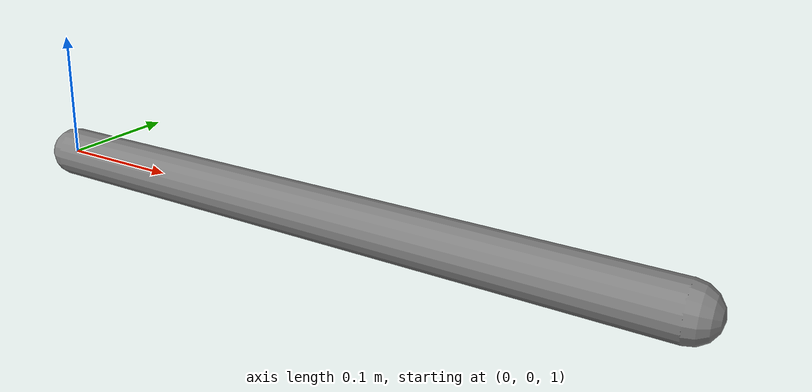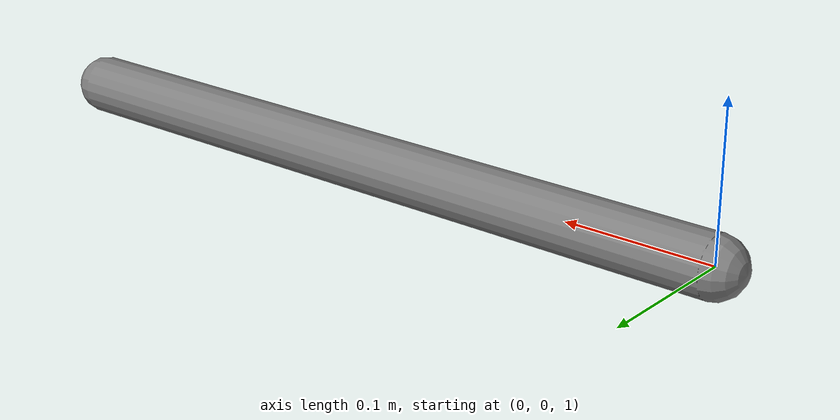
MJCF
<mujoco model="spinning-rod">
  <option gravity="0 0 -9.81" timestep="0.001"/>
  <compiler angle="radian"/>
  <worldbody>
    <body name="rod" pos="0 0 1">
      <joint name="hinge" type="hinge" axis="0 0 1" damping="0"/>
      <geom type="capsule" size="0.02" fromto="0 0 0 0.5 0 0" mass="1.0"/>
      <site name="tip" pos="0.5 0 0"/>
    </body>
  </worldbody>
  <actuator>
    <velocity name="motor" joint="hinge" kv="100"/>
  </actuator>
  <sensor>
    <framelinvel name="tip_linvel" objtype="site" objname="tip"/>
    <frameangvel name="tip_angvel" objtype="site" objname="tip"/>
  </sensor>
</mujoco>
